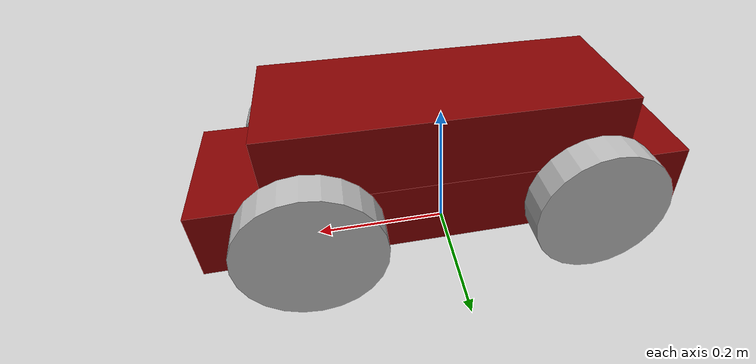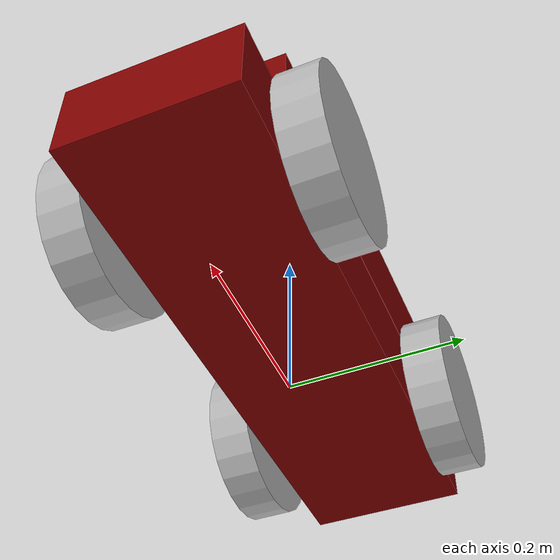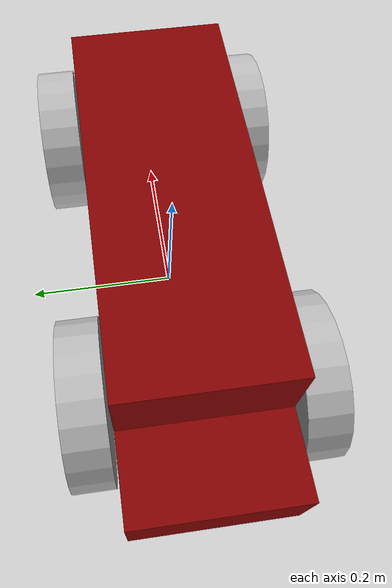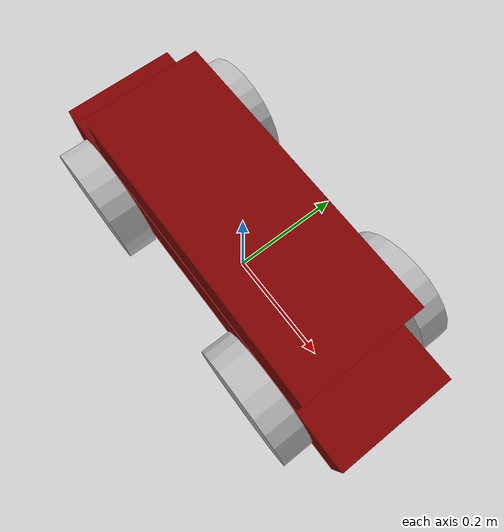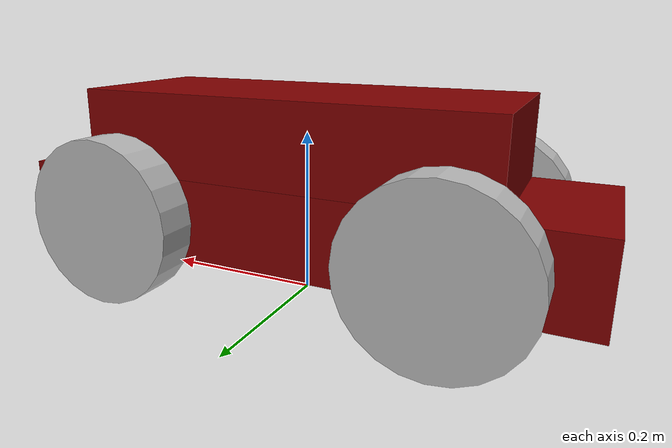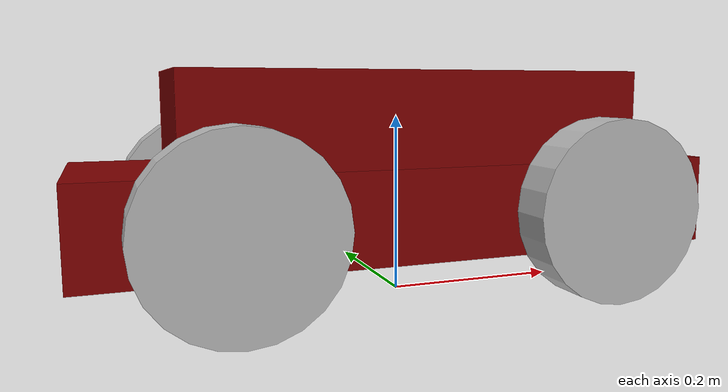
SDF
<?xml version='1.0'?>
<sdf version='1.6'>
  <model name="nava_mobicar">

    <link name='chassis'>
      <pose>0 0 .1 0 0 0</pose>

      <inertial>
        <pose>0.1 0 0  0 0 0</pose>
        <mass>10</mass>
        <inertia>
          <ixx>0.21666666666666667</ixx>
          <iyy>0.8416666666666667</iyy>
          <izz>1.0416666666666667</izz>
          <ixy>0</ixy>
          <ixz>0</ixz>
          <iyz>0</iyz>
        </inertia>
      </inertial>

      <collision name='collision'>
        <geometry>
          <box>
            <size>.7 .2 .1</size>
          </box>
        </geometry>
      </collision>

      <visual name='vis1'>
        <geometry>
          <box>
            <size>.7 .2 .1</size>
          </box>
        </geometry>

        <material>
          <ambient>0.5 0 0 1</ambient>
          <diffuse>0.5 0 0 1</diffuse>
          <specular>0.1 0.1 0.1 1</specular>
          <emissive>0 0 0 0</emissive>
        </material>
      </visual>

      <visual name="vis2">
        <pose>0 0 0.1 0 0 0</pose>
        <geometry>
          <box>
            <size>.5 .2 .1</size>
          </box>
        </geometry>

        <material>
          <ambient>0.5 0 0 1</ambient>
          <diffuse>0.5 0 0 1</diffuse>
          <specular>0.1 0.1 0.1 1</specular>
          <emissive>0 0 0 0</emissive>
        </material>
      </visual>
    </link>

    <link name="left_front_wheel">
      <pose>0.2 0.13 0.1 0 1.5707 1.5707</pose>
      <collision name="collision">
        <geometry>
          <cylinder>
            <radius>.1</radius>
            <length>.05</length>
          </cylinder>
        </geometry>
      </collision>
      <visual name="visual">
        <geometry>
          <cylinder>
            <radius>.1</radius>
            <length>.05</length>
          </cylinder>
        </geometry>
      </visual>
    </link>

    <link name="right_front_wheel">
      <pose>0.2 -0.13 0.1 0 1.5707 1.5707</pose>
      <collision name="collision">
        <geometry>
          <cylinder>
            <radius>.1</radius>
            <length>.05</length>
          </cylinder>
        </geometry>
      </collision>
      <visual name="visual">
        <geometry>
          <cylinder>
            <radius>.1</radius>
            <length>.05</length>
          </cylinder>
        </geometry>
      </visual>
    </link>

    <link name="left_back_wheel">
      <pose>-0.2 0.13 0.1 0 1.5707 1.5707</pose>

      <collision name="collision">
        <geometry>
          <cylinder>
            <radius>.1</radius>
            <length>.05</length>
          </cylinder>
        </geometry>
      </collision>
      <visual name="visual">
        <geometry>
          <cylinder>
            <radius>.1</radius>
            <length>.05</length>
          </cylinder>
        </geometry>
      </visual>
    </link>

    <link name="right_back_wheel">
      <pose>-0.2 -0.13 0.1 0 1.5707 1.5707</pose>

      <collision name="collision">
        <geometry>
          <cylinder>
            <radius>.1</radius>
            <length>.05</length>
          </cylinder>
        </geometry>
      </collision>
      <visual name="visual">
        <geometry>
          <cylinder>
            <radius>.1</radius>
            <length>.05</length>
          </cylinder>
        </geometry>
      </visual>
    </link>

    <joint type="universal" name="left_front_wheel_hinge">
     <pose>0 0 -0.03 0 0 0</pose>
      <child>left_front_wheel</child>
      <parent>chassis</parent>
      <axis>
        <xyz>0 0 1</xyz>
      </axis>
    </joint>

    <joint type="universal" name="right_front_wheel_hinge">
      <pose>0 0 0.03 0 0 0</pose>
      <child>right_front_wheel</child>
      <parent>chassis</parent>
      <axis>
        <xyz>0 0 1</xyz>
      </axis>
    </joint>

    <joint type="revolute" name="left_back_wheel_hinge">
     <pose>0 0 -0.03 0 0 0</pose>
      <child>left_back_wheel</child>
      <parent>chassis</parent>
      <axis>
        <xyz>0 0 1</xyz>
      </axis>
    </joint>

    <joint type="revolute" name="right_back_wheel_hinge">
      <pose>0 0 0.03 0 0 0</pose>
      <child>right_back_wheel</child>
      <parent>chassis</parent>
      <axis>
        <xyz>0 0 1</xyz>
      </axis>
    </joint>

    <plugin name="mobicar_plugin" filename="../lib/libmobicar_plugin.so">
      <namespace_model>ILU</namespace_model>
      <velocity>0</velocity>
    </plugin>
  </model>
</sdf>
